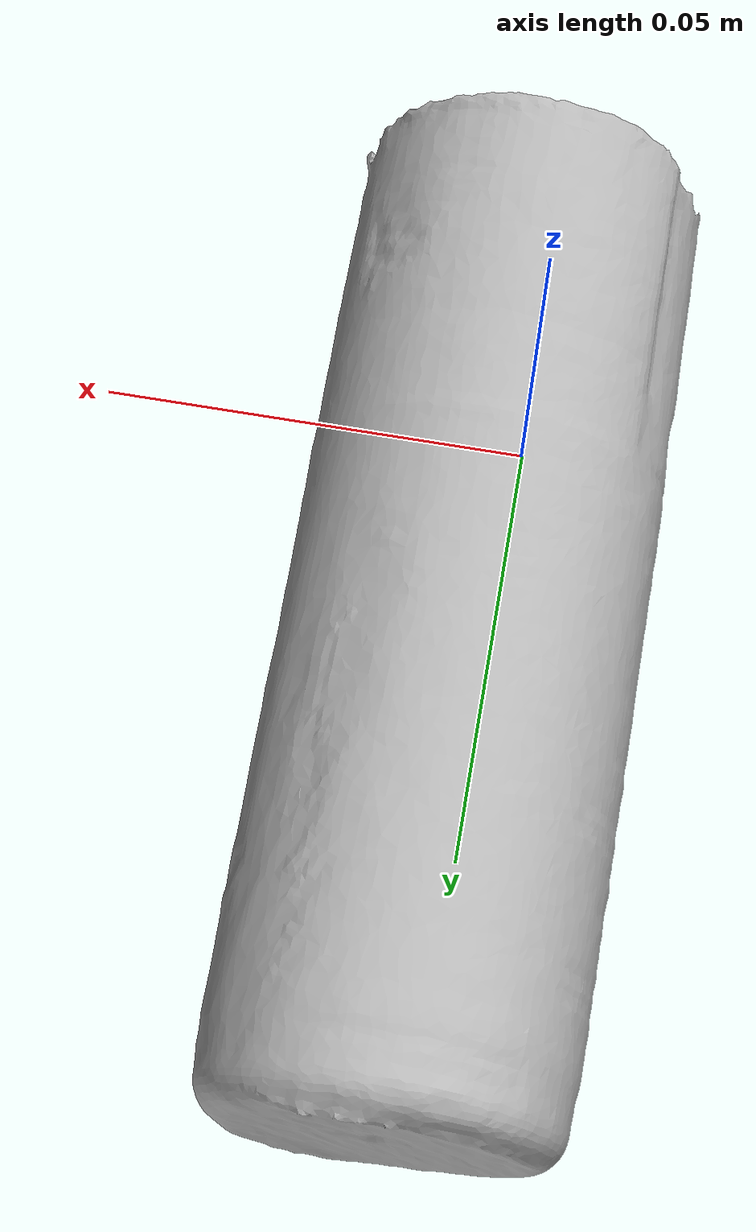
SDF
<?xml version='1.0'?>
<sdf version="1.4">
  <model name="Sweetener">
    <static>false</static>
    <link name="link">
      <inertial>
        <pose>0.0037725589852760882 0.021685656280570332 -0.002188672719079712 -1.5932735767063833 -0.5381858207858259 -3.1299292884879137</pose>
        <mass>0.017025097904897275</mass>
        <inertia>
          <ixx>2.2323621453954665e-05</ixx>
          <ixy>3.772722660403516e-21</ixy>
          <ixz>2.8208426284879155e-21</ixz>
          <iyy>2.2283961939460856e-05</iyy>
          <iyz>-4.4251596429964394e-21</iyz>
          <izz>3.822098636656232e-06</izz>
        </inertia>
      </inertial>
      <collision name="collision">
        <geometry>
          <mesh>
            <!-- Use a downsampled mesh for collisions -->
            <uri>model:///Sweetener/Sweetener_250_collision.obj</uri>
	        </mesh>
        </geometry>
        <surface>
      </surface>
      </collision>
      <visual name="visual">
        <geometry>
          <mesh>
            <uri>model:///Sweetener/Sweetener_25k_tex.obj</uri>
	        </mesh>
        </geometry>
        <material>
          <script>
            <uri>model:///Sweetener/Sweetener.material</uri>
            <name>Sweetener</name>
          </script>
        </material>
      </visual>
    </link>
  </model>
</sdf>
